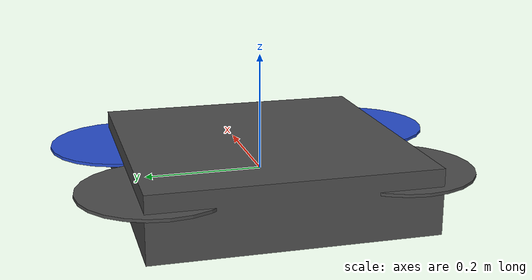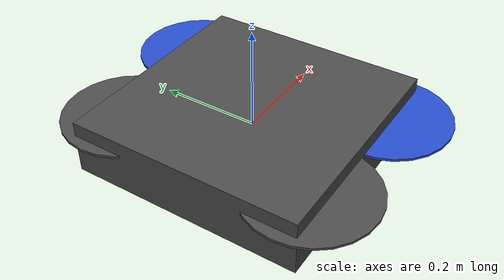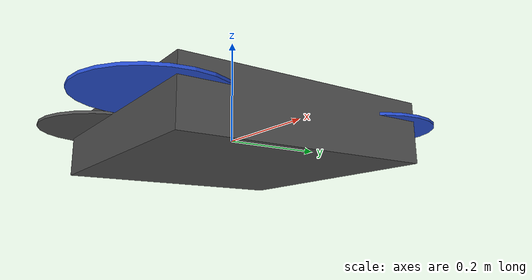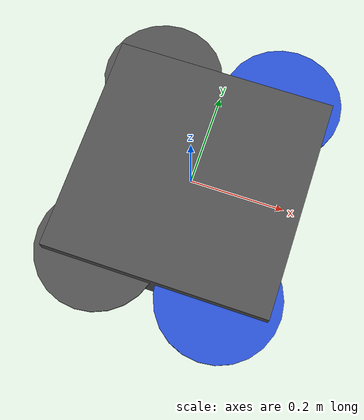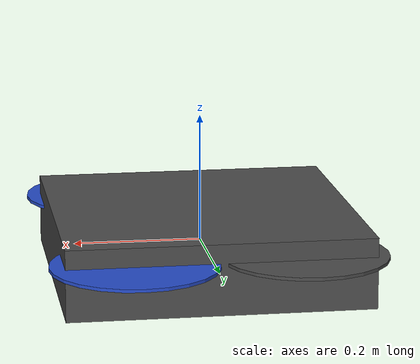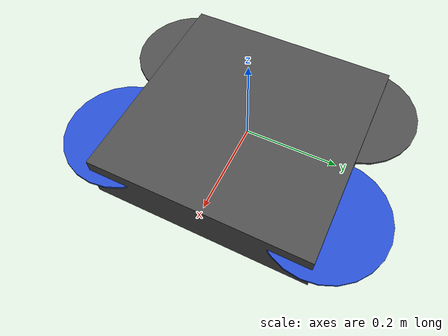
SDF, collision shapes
<?xml version='1.0'?>
<sdf version='1.5'>
  <model name='iris_fpv_cam'>

    <include>
      <uri>model://iris</uri>
    </include>

    <!-- 下置深度相机 -->
    <include>
      <uri>model://kinect_self</uri>
      <pose>0.1 0 0 0 1.57 0</pose>
    </include>
    <joint name="kinect_joint" type="fixed">
      <child>kinect_self::link</child>
      <parent>iris::base_link</parent>
      <axis>
        <xyz>0 0 0</xyz>
        <limit>
          <upper>0</upper>
          <lower>0</lower>
        </limit>
      </axis>
    </joint>

  </model>
</sdf>

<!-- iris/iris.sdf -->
<sdf version='1.6'>
  <model name='iris'>
    <link name='base_link'>
      <pose frame=''>0 0 0 0 -0 0</pose>
      <inertial>
        <pose frame=''>0 0 0 0 -0 0</pose>
        <mass>1.5</mass>
        <inertia>
          <ixx>0.0347563</ixx>
          <ixy>0</ixy>
          <ixz>0</ixz>
          <iyy>0.0458929</iyy>
          <iyz>0</iyz>
          <izz>0.0977</izz>
        </inertia>
      </inertial>
      <collision name='base_link_inertia_collision'>
        <pose frame=''>0 0 0 0 -0 0</pose>
        <geometry>
          <box>
            <size>0.47 0.47 0.11</size>
          </box>
        </geometry>
        <surface>
          <contact>
            <ode>
              <min_depth>0.001</min_depth>
              <max_vel>0</max_vel>
            </ode>
          </contact>
          <friction>
            <ode/>
          </friction>
        </surface>
      </collision>
      <visual name='base_link_inertia_visual'>
        <pose frame=''>0 0 0 0 -0 0</pose>
        <geometry>
          <mesh>
            <scale>1 1 1</scale>
            <uri>model://rotors_description/meshes/iris.stl</uri>
          </mesh>
        </geometry>
        <material>
          <script>
            <name>Gazebo/DarkGrey</name>
            <uri>file://media/materials/scripts/gazebo.material</uri>
          </script>
        </material>
      </visual>
      <gravity>1</gravity>
      <velocity_decay/>
      <self_collide>0</self_collide>
    </link>
    <link name='/imu_link'>
      <pose frame=''>0 0 0 0 -0 0</pose>
      <inertial>
        <pose frame=''>0 0 0 0 -0 0</pose>
        <mass>0.015</mass>
        <inertia>
          <ixx>1e-05</ixx>
          <ixy>0</ixy>
          <ixz>0</ixz>
          <iyy>1e-05</iyy>
          <iyz>0</iyz>
          <izz>1e-05</izz>
        </inertia>
      </inertial>
    </link>
    <joint name='/imu_joint' type='revolute'>
      <child>/imu_link</child>
      <parent>base_link</parent>
      <axis>
        <xyz>1 0 0</xyz>
        <limit>
          <lower>0</lower>
          <upper>0</upper>
          <effort>0</effort>
          <velocity>0</velocity>
        </limit>
        <dynamics>
          <spring_reference>0</spring_reference>
          <spring_stiffness>0</spring_stiffness>
        </dynamics>
        <use_parent_model_frame>1</use_parent_model_frame>
      </axis>
    </joint>
    <link name='rotor_0'>
      <pose frame=''>0.13 -0.22 0.023 0 -0 0</pose>
      <inertial>
        <pose frame=''>0 0 0 0 -0 0</pose>
        <mass>0.005</mass>
        <inertia>
          <ixx>9.75e-07</ixx>
          <ixy>0</ixy>
          <ixz>0</ixz>
          <iyy>0.000273104</iyy>
          <iyz>0</iyz>
          <izz>0.000274004</izz>
        </inertia>
      </inertial>
      <collision name='rotor_0_collision'>
        <pose frame=''>0 0 0 0 -0 0</pose>
        <geometry>
          <cylinder>
            <length>0.005</length>
            <radius>0.128</radius>
          </cylinder>
        </geometry>
        <surface>
          <contact>
            <ode/>
          </contact>
          <friction>
            <ode/>
          </friction>
        </surface>
      </collision>
      <visual name='rotor_0_visual'>
        <pose frame=''>0 0 0 0 -0 0</pose>
        <geometry>
          <mesh>
            <scale>1 1 1</scale>
            <uri>model://rotors_description/meshes/iris_prop_ccw.dae</uri>
          </mesh>
        </geometry>
        <material>
          <script>
            <name>Gazebo/Blue</name>
            <uri>file://media/materials/scripts/gazebo.material</uri>
          </script>
        </material>
      </visual>
      <gravity>1</gravity>
      <velocity_decay/>
      <self_collide>0</self_collide>
    </link>
    <joint name='rotor_0_joint' type='revolute'>
      <child>rotor_0</child>
      <parent>base_link</parent>
      <axis>
        <xyz>0 0 1</xyz>
        <limit>
          <lower>-1e+16</lower>
          <upper>1e+16</upper>
        </limit>
        <dynamics>
          <spring_reference>0</spring_reference>
          <spring_stiffness>0</spring_stiffness>
        </dynamics>
        <use_parent_model_frame>1</use_parent_model_frame>
      </axis>
    </joint>
    <link name='rotor_1'>
      <pose frame=''>-0.13 0.2 0.023 0 -0 0</pose>
      <inertial>
        <pose frame=''>0 0 0 0 -0 0</pose>
        <mass>0.005</mass>
        <inertia>
          <ixx>9.75e-07</ixx>
          <ixy>0</ixy>
          <ixz>0</ixz>
          <iyy>0.000273104</iyy>
          <iyz>0</iyz>
          <izz>0.000274004</izz>
        </inertia>
      </inertial>
      <collision name='rotor_1_collision'>
        <pose frame=''>0 0 0 0 -0 0</pose>
        <geometry>
          <cylinder>
            <length>0.005</length>
            <radius>0.128</radius>
          </cylinder>
        </geometry>
        <surface>
          <contact>
            <ode/>
          </contact>
          <friction>
            <ode/>
          </friction>
        </surface>
      </collision>
      <visual name='rotor_1_visual'>
        <pose frame=''>0 0 0 0 -0 0</pose>
        <geometry>
          <mesh>
            <scale>1 1 1</scale>
            <uri>model://rotors_description/meshes/iris_prop_ccw.dae</uri>
          </mesh>
        </geometry>
        <material>
          <script>
            <name>Gazebo/DarkGrey</name>
            <uri>file://media/materials/scripts/gazebo.material</uri>
          </script>
        </material>
      </visual>
      <gravity>1</gravity>
      <velocity_decay/>
      <self_collide>0</self_collide>
    </link>
    <joint name='rotor_1_joint' type='revolute'>
      <child>rotor_1</child>
      <parent>base_link</parent>
      <axis>
        <xyz>0 0 1</xyz>
        <limit>
          <lower>-1e+16</lower>
          <upper>1e+16</upper>
        </limit>
        <dynamics>
          <spring_reference>0</spring_reference>
          <spring_stiffness>0</spring_stiffness>
        </dynamics>
        <use_parent_model_frame>1</use_parent_model_frame>
      </axis>
    </joint>
    <link name='rotor_2'>
      <pose frame=''>0.13 0.22 0.023 0 -0 0</pose>
      <inertial>
        <pose frame=''>0 0 0 0 -0 0</pose>
        <mass>0.005</mass>
        <inertia>
          <ixx>9.75e-07</ixx>
          <ixy>0</ixy>
          <ixz>0</ixz>
          <iyy>0.000273104</iyy>
          <iyz>0</iyz>
          <izz>0.000274004</izz>
        </inertia>
      </inertial>
      <collision name='rotor_2_collision'>
        <pose frame=''>0 0 0 0 -0 0</pose>
        <geometry>
          <cylinder>
            <length>0.005</length>
            <radius>0.128</radius>
          </cylinder>
        </geometry>
        <surface>
          <contact>
            <ode/>
          </contact>
          <friction>
            <ode/>
          </friction>
        </surface>
      </collision>
      <visual name='rotor_2_visual'>
        <pose frame=''>0 0 0 0 -0 0</pose>
        <geometry>
          <mesh>
            <scale>1 1 1</scale>
            <uri>model://rotors_description/meshes/iris_prop_cw.dae</uri>
          </mesh>
        </geometry>
        <material>
          <script>
            <name>Gazebo/Blue</name>
            <uri>file://media/materials/scripts/gazebo.material</uri>
          </script>
        </material>
      </visual>
      <gravity>1</gravity>
      <velocity_decay/>
      <self_collide>0</self_collide>
    </link>
    <joint name='rotor_2_joint' type='revolute'>
      <child>rotor_2</child>
      <parent>base_link</parent>
      <axis>
        <xyz>0 0 1</xyz>
        <limit>
          <lower>-1e+16</lower>
          <upper>1e+16</upper>
        </limit>
        <dynamics>
          <spring_reference>0</spring_reference>
          <spring_stiffness>0</spring_stiffness>
        </dynamics>
        <use_parent_model_frame>1</use_parent_model_frame>
      </axis>
    </joint>
    <link name='rotor_3'>
      <pose frame=''>-0.13 -0.2 0.023 0 -0 0</pose>
      <inertial>
        <pose frame=''>0 0 0 0 -0 0</pose>
        <mass>0.005</mass>
        <inertia>
          <ixx>9.75e-07</ixx>
          <ixy>0</ixy>
          <ixz>0</ixz>
          <iyy>0.000273104</iyy>
          <iyz>0</iyz>
          <izz>0.000274004</izz>
        </inertia>
      </inertial>
      <collision name='rotor_3_collision'>
        <pose frame=''>0 0 0 0 -0 0</pose>
        <geometry>
          <cylinder>
            <length>0.005</length>
            <radius>0.128</radius>
          </cylinder>
        </geometry>
        <surface>
          <contact>
            <ode/>
          </contact>
          <friction>
            <ode/>
          </friction>
        </surface>
      </collision>
      <visual name='rotor_3_visual'>
        <pose frame=''>0 0 0 0 -0 0</pose>
        <geometry>
          <mesh>
            <scale>1 1 1</scale>
            <uri>model://rotors_description/meshes/iris_prop_cw.dae</uri>
          </mesh>
        </geometry>
        <material>
          <script>
            <name>Gazebo/DarkGrey</name>
            <uri>file://media/materials/scripts/gazebo.material</uri>
          </script>
        </material>
      </visual>
      <gravity>1</gravity>
      <velocity_decay/>
      <self_collide>0</self_collide>
    </link>
    <joint name='rotor_3_joint' type='revolute'>
      <child>rotor_3</child>
      <parent>base_link</parent>
      <axis>
        <xyz>0 0 1</xyz>
        <limit>
          <lower>-1e+16</lower>
          <upper>1e+16</upper>
        </limit>
        <dynamics>
          <spring_reference>0</spring_reference>
          <spring_stiffness>0</spring_stiffness>
        </dynamics>
        <use_parent_model_frame>1</use_parent_model_frame>
      </axis>
    </joint>
    <plugin name='rosbag' filename='libgazebo_multirotor_base_plugin.so'>
      <robotNamespace/>
      <linkName>base_link</linkName>
      <rotorVelocitySlowdownSim>10</rotorVelocitySlowdownSim>
    </plugin>
    <plugin name='front_right_motor_model' filename='libgazebo_motor_model.so'>
      <robotNamespace/>
      <jointName>rotor_0_joint</jointName>
      <linkName>rotor_0</linkName>
      <turningDirection>ccw</turningDirection>
      <timeConstantUp>0.0125</timeConstantUp>
      <timeConstantDown>0.025</timeConstantDown>
      <maxRotVelocity>1100</maxRotVelocity>
      <motorConstant>8.54858e-06</motorConstant>
      <momentConstant>0.06</momentConstant>
      <commandSubTopic>/gazebo/command/motor_speed</commandSubTopic>
      <motorNumber>0</motorNumber>
      <rotorDragCoefficient>0.000806428</rotorDragCoefficient>
      <rollingMomentCoefficient>1e-06</rollingMomentCoefficient>
      <motorSpeedPubTopic>/motor_speed/0</motorSpeedPubTopic>
      <rotorVelocitySlowdownSim>10</rotorVelocitySlowdownSim>
    </plugin>
    <plugin name='back_left_motor_model' filename='libgazebo_motor_model.so'>
      <robotNamespace/>
      <jointName>rotor_1_joint</jointName>
      <linkName>rotor_1</linkName>
      <turningDirection>ccw</turningDirection>
      <timeConstantUp>0.0125</timeConstantUp>
      <timeConstantDown>0.025</timeConstantDown>
      <maxRotVelocity>1100</maxRotVelocity>
      <motorConstant>8.54858e-06</motorConstant>
      <momentConstant>0.06</momentConstant>
      <commandSubTopic>/gazebo/command/motor_speed</commandSubTopic>
      <motorNumber>1</motorNumber>
      <rotorDragCoefficient>0.000806428</rotorDragCoefficient>
      <rollingMomentCoefficient>1e-06</rollingMomentCoefficient>
      <motorSpeedPubTopic>/motor_speed/1</motorSpeedPubTopic>
      <rotorVelocitySlowdownSim>10</rotorVelocitySlowdownSim>
    </plugin>
    <plugin name='front_left_motor_model' filename='libgazebo_motor_model.so'>
      <robotNamespace/>
      <jointName>rotor_2_joint</jointName>
      <linkName>rotor_2</linkName>
      <turningDirection>cw</turningDirection>
      <timeConstantUp>0.0125</timeConstantUp>
      <timeConstantDown>0.025</timeConstantDown>
      <maxRotVelocity>1100</maxRotVelocity>
      <motorConstant>8.54858e-06</motorConstant>
      <momentConstant>0.06</momentConstant>
      <commandSubTopic>/gazebo/command/motor_speed</commandSubTopic>
      <motorNumber>2</motorNumber>
      <rotorDragCoefficient>0.000806428</rotorDragCoefficient>
      <rollingMomentCoefficient>1e-06</rollingMomentCoefficient>
      <motorSpeedPubTopic>/motor_speed/2</motorSpeedPubTopic>
      <rotorVelocitySlowdownSim>10</rotorVelocitySlowdownSim>
    </plugin>
    <plugin name='back_right_motor_model' filename='libgazebo_motor_model.so'>
      <robotNamespace/>
      <jointName>rotor_3_joint</jointName>
      <linkName>rotor_3</linkName>
      <turningDirection>cw</turningDirection>
      <timeConstantUp>0.0125</timeConstantUp>
      <timeConstantDown>0.025</timeConstantDown>
      <maxRotVelocity>1100</maxRotVelocity>
      <motorConstant>8.54858e-06</motorConstant>
      <momentConstant>0.06</momentConstant>
      <commandSubTopic>/gazebo/command/motor_speed</commandSubTopic>
      <motorNumber>3</motorNumber>
      <rotorDragCoefficient>0.000806428</rotorDragCoefficient>
      <rollingMomentCoefficient>1e-06</rollingMomentCoefficient>
      <motorSpeedPubTopic>/motor_speed/3</motorSpeedPubTopic>
      <rotorVelocitySlowdownSim>10</rotorVelocitySlowdownSim>
    </plugin>
    <plugin name='gps_plugin' filename='libgazebo_gps_plugin.so'>
      <robotNamespace/>
      <gpsNoise>true</gpsNoise>
    </plugin>
    <plugin name='magnetometer_plugin' filename='libgazebo_magnetometer_plugin.so'>
      <robotNamespace/>
      <pubRate>20</pubRate>
      <noiseDensity>0.0004</noiseDensity>
      <randomWalk>6.4e-06</randomWalk>
      <biasCorrelationTime>600</biasCorrelationTime>
      <magTopic>/mag</magTopic>
    </plugin>
    <plugin name='barometer_plugin' filename='libgazebo_barometer_plugin.so'>
      <robotNamespace/>
      <pubRate>10</pubRate>
      <baroTopic>/baro</baroTopic>
    </plugin>
    <plugin name='mavlink_interface' filename='libgazebo_mavlink_interface.so'>
      <robotNamespace/>
      <imuSubTopic>/imu</imuSubTopic>
      <gpsSubTopic>/gps</gpsSubTopic>
      <magSubTopic>/mag</magSubTopic>
      <baroSubTopic>/baro</baroSubTopic>
      <mavlink_addr>INADDR_ANY</mavlink_addr>
      <mavlink_udp_port>14560</mavlink_udp_port>
      <mavlink_tcp_port>4560</mavlink_tcp_port>
      <serialEnabled>false</serialEnabled>
      <serialDevice>/dev/ttyACM0</serialDevice>
      <baudRate>921600</baudRate>
      <qgc_addr>INADDR_ANY</qgc_addr>
      <qgc_udp_port>14550</qgc_udp_port>
      <sdk_addr>INADDR_ANY</sdk_addr>
      <sdk_udp_port>14540</sdk_udp_port>
      <hil_mode>false</hil_mode>
      <hil_state_level>false</hil_state_level>
      <vehicle_is_tailsitter>false</vehicle_is_tailsitter>
      <send_vision_estimation>true</send_vision_estimation>
      <send_odometry>false</send_odometry>
      <enable_lockstep>true</enable_lockstep>
      <use_tcp>true</use_tcp>
      <motorSpeedCommandPubTopic>/gazebo/command/motor_speed</motorSpeedCommandPubTopic>
      <control_channels>
        <channel name='rotor1'>
          <input_index>0</input_index>
          <input_offset>0</input_offset>
          <input_scaling>1000</input_scaling>
          <zero_position_disarmed>0</zero_position_disarmed>
          <zero_position_armed>100</zero_position_armed>
          <joint_control_type>velocity</joint_control_type>
        </channel>
        <channel name='rotor2'>
          <input_index>1</input_index>
          <input_offset>0</input_offset>
          <input_scaling>1000</input_scaling>
          <zero_position_disarmed>0</zero_position_disarmed>
          <zero_position_armed>100</zero_position_armed>
          <joint_control_type>velocity</joint_control_type>
        </channel>
        <channel name='rotor3'>
          <input_index>2</input_index>
          <input_offset>0</input_offset>
          <input_scaling>1000</input_scaling>
          <zero_position_disarmed>0</zero_position_disarmed>
          <zero_position_armed>100</zero_position_armed>
          <joint_control_type>velocity</joint_control_type>
        </channel>
        <channel name='rotor4'>
          <input_index>3</input_index>
          <input_offset>0</input_offset>
          <input_scaling>1000</input_scaling>
          <zero_position_disarmed>0</zero_position_disarmed>
          <zero_position_armed>100</zero_position_armed>
          <joint_control_type>velocity</joint_control_type>
        </channel>
        <channel name='rotor5'>
          <input_index>4</input_index>
          <input_offset>1</input_offset>
          <input_scaling>324.6</input_scaling>
          <zero_position_disarmed>0</zero_position_disarmed>
          <zero_position_armed>0</zero_position_armed>
          <joint_control_type>velocity</joint_control_type>
          <joint_control_pid>
            <p>0.1</p>
            <i>0</i>
            <d>0</d>
            <iMax>0.0</iMax>
            <iMin>0.0</iMin>
            <cmdMax>2</cmdMax>
            <cmdMin>-2</cmdMin>
          </joint_control_pid>
          <joint_name>zephyr_delta_wing::propeller_joint</joint_name>
        </channel>
        <channel name='rotor6'>
          <input_index>5</input_index>
          <input_offset>0</input_offset>
          <input_scaling>0.524</input_scaling>
          <zero_position_disarmed>0</zero_position_disarmed>
          <zero_position_armed>0</zero_position_armed>
          <joint_control_type>position</joint_control_type>
          <joint_name>zephyr_delta_wing::flap_left_joint</joint_name>
          <joint_control_pid>
            <p>10.0</p>
            <i>0</i>
            <d>0</d>
            <iMax>0</iMax>
            <iMin>0</iMin>
            <cmdMax>20</cmdMax>
            <cmdMin>-20</cmdMin>
          </joint_control_pid>
        </channel>
        <channel name='rotor7'>
          <input_index>6</input_index>
          <input_offset>0</input_offset>
          <input_scaling>0.524</input_scaling>
          <zero_position_disarmed>0</zero_position_disarmed>
          <zero_position_armed>0</zero_position_armed>
          <joint_control_type>position</joint_control_type>
          <joint_name>zephyr_delta_wing::flap_right_joint</joint_name>
          <joint_control_pid>
            <p>10.0</p>
            <i>0</i>
            <d>0</d>
            <iMax>0</iMax>
            <iMin>0</iMin>
            <cmdMax>20</cmdMax>
            <cmdMin>-20</cmdMin>
          </joint_control_pid>
        </channel>
        <channel name='rotor8'>
          <input_index>7</input_index>
          <input_offset>0</input_offset>
          <input_scaling>0.524</input_scaling>
          <zero_position_disarmed>0</zero_position_disarmed>
          <zero_position_armed>0</zero_position_armed>
          <joint_control_type>position</joint_control_type>
        </channel>
      </control_channels>
    </plugin>
    <static>0</static>
    <plugin name='rotors_gazebo_imu_plugin' filename='libgazebo_imu_plugin.so'>
      <robotNamespace/>
      <linkName>/imu_link</linkName>
      <imuTopic>/imu</imuTopic>
      <gyroscopeNoiseDensity>0.0003394</gyroscopeNoiseDensity>
      <gyroscopeRandomWalk>3.8785e-05</gyroscopeRandomWalk>
      <gyroscopeBiasCorrelationTime>1000.0</gyroscopeBiasCorrelationTime>
      <gyroscopeTurnOnBiasSigma>0.0087</gyroscopeTurnOnBiasSigma>
      <accelerometerNoiseDensity>0.004</accelerometerNoiseDensity>
      <accelerometerRandomWalk>0.006</accelerometerRandomWalk>
      <accelerometerBiasCorrelationTime>300.0</accelerometerBiasCorrelationTime>
      <accelerometerTurnOnBiasSigma>0.196</accelerometerTurnOnBiasSigma>
    </plugin>
  </model>
</sdf>

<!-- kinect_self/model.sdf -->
<sdf version="1.5">
  <model name="kinect_self">
    <pose>0 0 0 0 0 0</pose>
    <link name="link">
      <inertial>
        <mass>0.01</mass>
        <inertia>
          <ixx>4.16666666667e-06</ixx>
          <iyy>5.20833333333e-07</iyy>
          <izz>3.85416666667e-06</izz>
        </inertia>
      </inertial>

      <collision name="collision">
        <geometry>
          <box>
            <size>0.023000 0.076000 0.032000</size>
          </box>
        </geometry>
      </collision>
      <visual name="visual">
        <geometry>
          <box>
            <size>0.023000 0.076000 0.032000</size>
          </box>
        </geometry>
      </visual>
      <sensor type="depth" name="camera">
      <always_on>true</always_on>
      <update_rate>30.0</update_rate>
      <camera>
        <horizontal_fov>1.3962634</horizontal_fov>　　
        <image>
          <format>B8G8R8</format>
          <width>640</width>
          <height>480</height>
        </image>
        <clip>
          <near>0.4</near>
          <far>100.0</far>
        </clip>
      </camera>
      <plugin name="camera_plugin" filename="libgazebo_ros_openni_kinect.so">
        <baseline>0.2</baseline>
        <alwaysOn>true</alwaysOn>
        <updateRate>0.0</updateRate>
        <cameraName>camera_ir</cameraName>
        <imageTopicName>/camera/color/image_raw</imageTopicName>
        <cameraInfoTopicName>/camera/color/camera_info</cameraInfoTopicName>
        <depthImageTopicName>/camera/depth/image_raw</depthImageTopicName>
        <depthImageCameraInfoTopicName>/camera/depth/camera_info</depthImageCameraInfoTopicName>
        <pointCloudTopicName>/camera/depth/points</pointCloudTopicName>
        <frameName>camera_link</frameName>
        <pointCloudCutoff>0.5</pointCloudCutoff>
        <pointCloudCutoffMax>20.0</pointCloudCutoffMax>
        <distortionK1>0</distortionK1>
        <distortionK2>0</distortionK2>
        <distortionK3>0</distortionK3>
        <distortionT1>0</distortionT1>
        <distortionT2>0</distortionT2>
        <CxPrime>0</CxPrime>
        <Cx>320</Cx>
        <Cy>240</Cy>
        <focalLength>450</focalLength>
        <hackBaseline>0</hackBaseline>
      </plugin>
    </sensor>
      <gravity>0</gravity>
    </link>
  </model>

</sdf>
